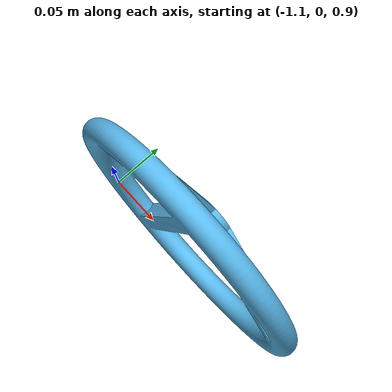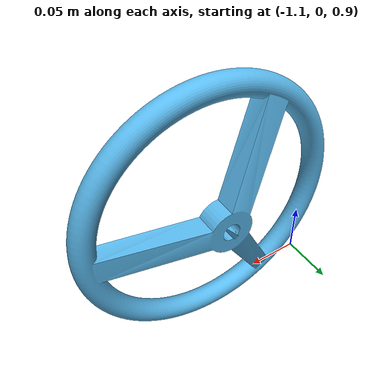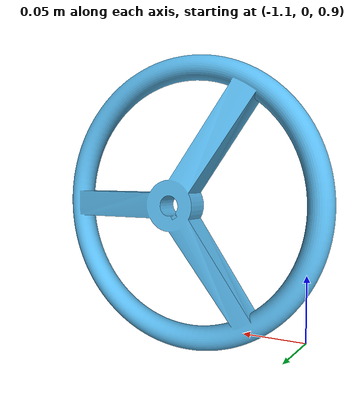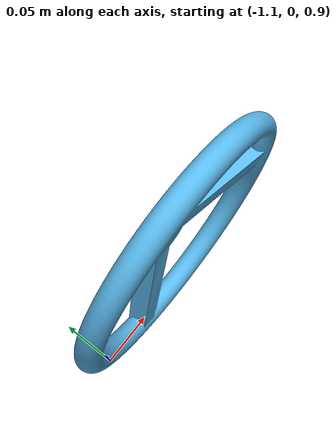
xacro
<?xml version="1.0" encoding="utf-8"?>
<robot name="valve" xmlns:xacro="http://www.ros.org/wiki/xacro">
    <xacro:arg name="resource_directory" default="$(find mppi_manipulation)/data/meshes"/>
    <xacro:arg name="object_position" default="-1 0 1"/>
    <xacro:arg name="object_rpy" default="1.5708 0 0"/>
    <xacro:arg name="valve_type" default="lee"/>

    <xacro:property name="base_position_x" default="1.0"/>
    <xacro:property name="base_position_y" default="0.0"/>
    <xacro:property name="base_length" default="0.2"/>
    <xacro:property name="base_height" default="0.5"/>
    <xacro:property name="base_width" default="0.2"/>

    <link name="world"/>

    <link name="handle_link">
        <visual>
            <origin rpy="0 0 0" xyz="0 0 0"/>
            <geometry>
                <mesh filename="file://$(arg resource_directory)/valve_$(arg valve_type)_visual.obj" scale="1 1 1"/>
            </geometry>
        </visual>
        <collision>
            <origin rpy="0 0 0" xyz="0 0 0"/>
        <geometry>
                <mesh  filename="file://$(arg resource_directory)/valve_$(arg valve_type)_collision.obj" scale="1 1 1"/>
            </geometry>
        </collision>
    </link>

    <joint name="articulation_joint" type="revolute">
        <parent link="world"/>
        <child link="handle_link"/>
        <origin xyz="$(arg object_position)" rpy="$(arg object_rpy)"/>
        <dynamics damping="0.0" friction="0.0"/>
        <axis xyz="0 0 1"/>
        <limit upper="300.14" lower="-300.14" effort="100" velocity="1.0"/>
    </joint>

</robot>
